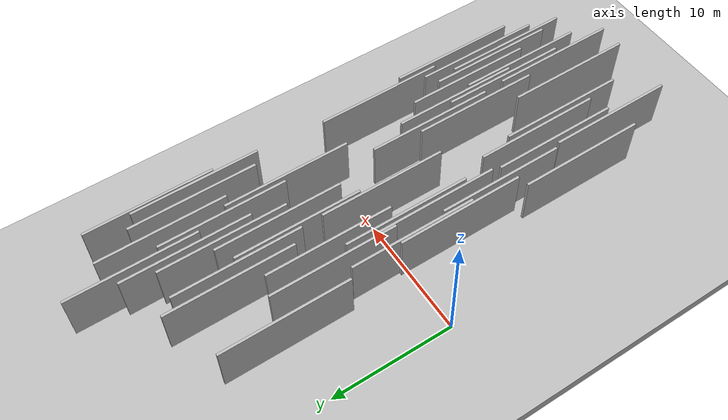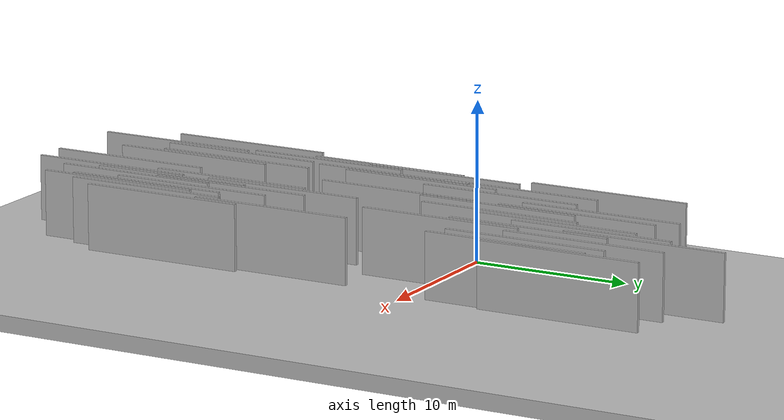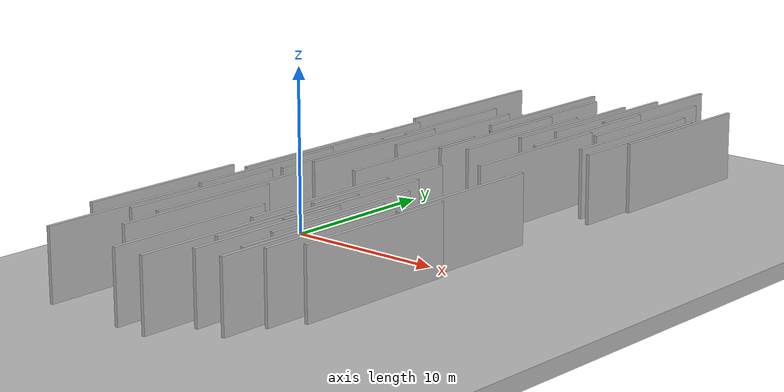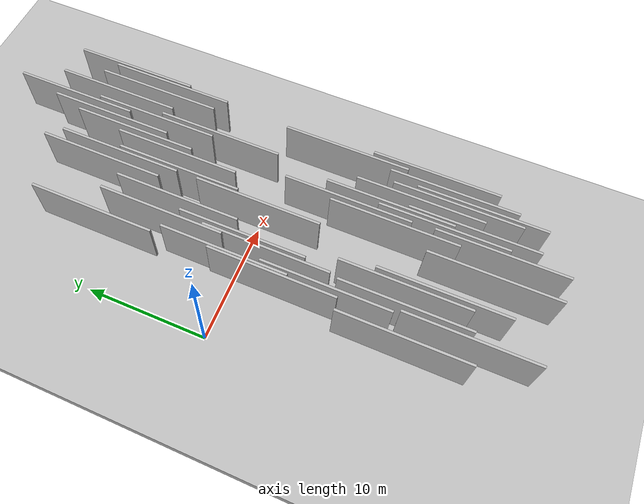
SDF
<?xml version="1.0" encoding="utf-8"?>

<sdf version="1.6">

   <world name="default">

      <gui fullscreen="0">

         <camera name="user_camera">

            <pose>-15 0 4.57585 0 0 0</pose>

            <view_controller>orbit</view_controller>

         </camera>

      </gui>

      <scene>

         <sky>

           <clouds>

             <speed>12</speed>

           </clouds>

         </sky>

         <ambient>0.4 0.4 0.4 1</ambient>

         <background>0.7 0.7 0.7 1</background>

         <shadows>1</shadows>

      </scene>

      <gravity>0 0 -9.8066</gravity>

      <magnetic_field>6e-06 2.3e-05 -4.2e-05</magnetic_field>

      <physics default="0" name="default_physics" type="ode">

         <ode>

            <solver>

               <type>quick</type>

               <iters>10</iters>

               <sor>1.0</sor>

               <use_dynamic_moi_rescaling>0</use_dynamic_moi_rescaling>

            </solver>

            <constraints>

               <cfm>0</cfm>

               <erp>0.2</erp>

               <contact_max_correcting_vel>100</contact_max_correcting_vel>

               <contact_surface_layer>0.001</contact_surface_layer>

            </constraints>

         </ode>

         <max_step_size>0.004</max_step_size>

         <real_time_factor>1</real_time_factor>

         <real_time_update_rate>250</real_time_update_rate>

      </physics>

      <light name="sun" type="directional">

         <cast_shadows>1</cast_shadows>

         <pose>0 0 10 0 0 0</pose>

         <diffuse>0.8 0.8 0.8 1</diffuse>

         <specular>0.2 0.2 0.2 1</specular>

         <attenuation>

            <range>1000</range>

            <constant>0.9</constant>

            <linear>0.01</linear>

            <quadratic>0.001</quadratic>

         </attenuation>

         <direction>-0.5 0.1 -0.9</direction>

      </light>

      <include>

         <name>ground_plane_1</name>

         <uri>model://HANNAS_ground_plane</uri>

         <pose>0 0 0  0 0 0</pose>

      </include>

      <include>

         <name>ground_plane_2</name>

         <uri>model://HANNAS_ground_plane</uri>

         <pose>100 0 0  0 0 0</pose>

      </include>

      <model name="HANNAS_wall_1">

         <static>1</static>

         <pose frame="">12.0063 13.5859 2.5 0.000000 0.000000 1.570796</pose>

         <link name="link">

            <pose frame="">0 0 2.00 0 0 0</pose>

            <collision name="collision">

               <geometry>

                  <box>

                     <size>10.00 0.2 4.00</size>

                  </box>

               </geometry>

               <max_contacts>10</max_contacts>

               <surface>

                  <contact>

                     <ode/>

                  </contact>

                  <bounce/>

                  <friction>

                     <torsional>

                        <ode/>

                     </torsional>

                     <ode/>

                  </friction>

               </surface>

            </collision>

            <visual name="visual">

               <cast_shadows>0</cast_shadows>

               <geometry>

                  <box>

                     <size>10.00 0.2 4.00</size>

                  </box>

               </geometry>

               <material>

                  <script>

                     <uri>model://HANNAS_wall/materials/scripts</uri>

                     <uri>model://HANNAS_wall/materials/textures</uri>

                     <name>vrc/HANNAS_wall</name>

                  </script>

               </material>

            </visual>

            <self_collide>0</self_collide>

            <enable_wind>0</enable_wind>

            <kinematic>0</kinematic>

         </link>

      </model>

      <model name="HANNAS_wall_2">

         <static>1</static>

         <pose frame="">5.9091 -2.4661 2.5 0.000000 0.000000 1.570796</pose>

         <link name="link">

            <pose frame="">0 0 2.00 0 0 0</pose>

            <collision name="collision">

               <geometry>

                  <box>

                     <size>10.00 0.2 4.00</size>

                  </box>

               </geometry>

               <max_contacts>10</max_contacts>

               <surface>

                  <contact>

                     <ode/>

                  </contact>

                  <bounce/>

                  <friction>

                     <torsional>

                        <ode/>

                     </torsional>

                     <ode/>

                  </friction>

               </surface>

            </collision>

            <visual name="visual">

               <cast_shadows>0</cast_shadows>

               <geometry>

                  <box>

                     <size>10.00 0.2 4.00</size>

                  </box>

               </geometry>

               <material>

                  <script>

                     <uri>model://HANNAS_wall/materials/scripts</uri>

                     <uri>model://HANNAS_wall/materials/textures</uri>

                     <name>vrc/HANNAS_wall</name>

                  </script>

               </material>

            </visual>

            <self_collide>0</self_collide>

            <enable_wind>0</enable_wind>

            <kinematic>0</kinematic>

         </link>

      </model>

      <model name="HANNAS_wall_3">

         <static>1</static>

         <pose frame="">13.2497 -15.8099 2.5 0.000000 0.000000 1.570796</pose>

         <link name="link">

            <pose frame="">0 0 2.00 0 0 0</pose>

            <collision name="collision">

               <geometry>

                  <box>

                     <size>10.00 0.2 4.00</size>

                  </box>

               </geometry>

               <max_contacts>10</max_contacts>

               <surface>

                  <contact>

                     <ode/>

                  </contact>

                  <bounce/>

                  <friction>

                     <torsional>

                        <ode/>

                     </torsional>

                     <ode/>

                  </friction>

               </surface>

            </collision>

            <visual name="visual">

               <cast_shadows>0</cast_shadows>

               <geometry>

                  <box>

                     <size>10.00 0.2 4.00</size>

                  </box>

               </geometry>

               <material>

                  <script>

                     <uri>model://HANNAS_wall/materials/scripts</uri>

                     <uri>model://HANNAS_wall/materials/textures</uri>

                     <name>vrc/HANNAS_wall</name>

                  </script>

               </material>

            </visual>

            <self_collide>0</self_collide>

            <enable_wind>0</enable_wind>

            <kinematic>0</kinematic>

         </link>

      </model>

      <model name="HANNAS_wall_4">

         <static>1</static>

         <pose frame="">9.2239 -0.3779 2.5 0.000000 0.000000 1.570796</pose>

         <link name="link">

            <pose frame="">0 0 2.00 0 0 0</pose>

            <collision name="collision">

               <geometry>

                  <box>

                     <size>10.00 0.2 4.00</size>

                  </box>

               </geometry>

               <max_contacts>10</max_contacts>

               <surface>

                  <contact>

                     <ode/>

                  </contact>

                  <bounce/>

                  <friction>

                     <torsional>

                        <ode/>

                     </torsional>

                     <ode/>

                  </friction>

               </surface>

            </collision>

            <visual name="visual">

               <cast_shadows>0</cast_shadows>

               <geometry>

                  <box>

                     <size>10.00 0.2 4.00</size>

                  </box>

               </geometry>

               <material>

                  <script>

                     <uri>model://HANNAS_wall/materials/scripts</uri>

                     <uri>model://HANNAS_wall/materials/textures</uri>

                     <name>vrc/HANNAS_wall</name>

                  </script>

               </material>

            </visual>

            <self_collide>0</self_collide>

            <enable_wind>0</enable_wind>

            <kinematic>0</kinematic>

         </link>

      </model>

      <model name="HANNAS_wall_5">

         <static>1</static>

         <pose frame="">12.7220 17.2323 2.5 0.000000 0.000000 1.570796</pose>

         <link name="link">

            <pose frame="">0 0 2.00 0 0 0</pose>

            <collision name="collision">

               <geometry>

                  <box>

                     <size>10.00 0.2 4.00</size>

                  </box>

               </geometry>

               <max_contacts>10</max_contacts>

               <surface>

                  <contact>

                     <ode/>

                  </contact>

                  <bounce/>

                  <friction>

                     <torsional>

                        <ode/>

                     </torsional>

                     <ode/>

                  </friction>

               </surface>

            </collision>

            <visual name="visual">

               <cast_shadows>0</cast_shadows>

               <geometry>

                  <box>

                     <size>10.00 0.2 4.00</size>

                  </box>

               </geometry>

               <material>

                  <script>

                     <uri>model://HANNAS_wall/materials/scripts</uri>

                     <uri>model://HANNAS_wall/materials/textures</uri>

                     <name>vrc/HANNAS_wall</name>

                  </script>

               </material>

            </visual>

            <self_collide>0</self_collide>

            <enable_wind>0</enable_wind>

            <kinematic>0</kinematic>

         </link>

      </model>

      <model name="HANNAS_wall_6">

         <static>1</static>

         <pose frame="">5.1721 -17.8928 2.5 0.000000 0.000000 1.570796</pose>

         <link name="link">

            <pose frame="">0 0 2.00 0 0 0</pose>

            <collision name="collision">

               <geometry>

                  <box>

                     <size>10.00 0.2 4.00</size>

                  </box>

               </geometry>

               <max_contacts>10</max_contacts>

               <surface>

                  <contact>

                     <ode/>

                  </contact>

                  <bounce/>

                  <friction>

                     <torsional>

                        <ode/>

                     </torsional>

                     <ode/>

                  </friction>

               </surface>

            </collision>

            <visual name="visual">

               <cast_shadows>0</cast_shadows>

               <geometry>

                  <box>

                     <size>10.00 0.2 4.00</size>

                  </box>

               </geometry>

               <material>

                  <script>

                     <uri>model://HANNAS_wall/materials/scripts</uri>

                     <uri>model://HANNAS_wall/materials/textures</uri>

                     <name>vrc/HANNAS_wall</name>

                  </script>

               </material>

            </visual>

            <self_collide>0</self_collide>

            <enable_wind>0</enable_wind>

            <kinematic>0</kinematic>

         </link>

      </model>

      <model name="HANNAS_wall_7">

         <static>1</static>

         <pose frame="">11.5215 -10.2824 2.5 0.000000 0.000000 1.570796</pose>

         <link name="link">

            <pose frame="">0 0 2.00 0 0 0</pose>

            <collision name="collision">

               <geometry>

                  <box>

                     <size>10.00 0.2 4.00</size>

                  </box>

               </geometry>

               <max_contacts>10</max_contacts>

               <surface>

                  <contact>

                     <ode/>

                  </contact>

                  <bounce/>

                  <friction>

                     <torsional>

                        <ode/>

                     </torsional>

                     <ode/>

                  </friction>

               </surface>

            </collision>

            <visual name="visual">

               <cast_shadows>0</cast_shadows>

               <geometry>

                  <box>

                     <size>10.00 0.2 4.00</size>

                  </box>

               </geometry>

               <material>

                  <script>

                     <uri>model://HANNAS_wall/materials/scripts</uri>

                     <uri>model://HANNAS_wall/materials/textures</uri>

                     <name>vrc/HANNAS_wall</name>

                  </script>

               </material>

            </visual>

            <self_collide>0</self_collide>

            <enable_wind>0</enable_wind>

            <kinematic>0</kinematic>

         </link>

      </model>

      <model name="HANNAS_wall_8">

         <static>1</static>

         <pose frame="">10.8162 7.1400 2.5 0.000000 0.000000 1.570796</pose>

         <link name="link">

            <pose frame="">0 0 2.00 0 0 0</pose>

            <collision name="collision">

               <geometry>

                  <box>

                     <size>10.00 0.2 4.00</size>

                  </box>

               </geometry>

               <max_contacts>10</max_contacts>

               <surface>

                  <contact>

                     <ode/>

                  </contact>

                  <bounce/>

                  <friction>

                     <torsional>

                        <ode/>

                     </torsional>

                     <ode/>

                  </friction>

               </surface>

            </collision>

            <visual name="visual">

               <cast_shadows>0</cast_shadows>

               <geometry>

                  <box>

                     <size>10.00 0.2 4.00</size>

                  </box>

               </geometry>

               <material>

                  <script>

                     <uri>model://HANNAS_wall/materials/scripts</uri>

                     <uri>model://HANNAS_wall/materials/textures</uri>

                     <name>vrc/HANNAS_wall</name>

                  </script>

               </material>

            </visual>

            <self_collide>0</self_collide>

            <enable_wind>0</enable_wind>

            <kinematic>0</kinematic>

         </link>

      </model>

      <model name="HANNAS_wall_9">

         <static>1</static>

         <pose frame="">9.5311 6.3362 2.5 0.000000 0.000000 1.570796</pose>

         <link name="link">

            <pose frame="">0 0 2.00 0 0 0</pose>

            <collision name="collision">

               <geometry>

                  <box>

                     <size>10.00 0.2 4.00</size>

                  </box>

               </geometry>

               <max_contacts>10</max_contacts>

               <surface>

                  <contact>

                     <ode/>

                  </contact>

                  <bounce/>

                  <friction>

                     <torsional>

                        <ode/>

                     </torsional>

                     <ode/>

                  </friction>

               </surface>

            </collision>

            <visual name="visual">

               <cast_shadows>0</cast_shadows>

               <geometry>

                  <box>

                     <size>10.00 0.2 4.00</size>

                  </box>

               </geometry>

               <material>

                  <script>

                     <uri>model://HANNAS_wall/materials/scripts</uri>

                     <uri>model://HANNAS_wall/materials/textures</uri>

                     <name>vrc/HANNAS_wall</name>

                  </script>

               </material>

            </visual>

            <self_collide>0</self_collide>

            <enable_wind>0</enable_wind>

            <kinematic>0</kinematic>

         </link>

      </model>

      <model name="HANNAS_wall_10">

         <static>1</static>

         <pose frame="">14.3169 14.2576 2.5 0.000000 0.000000 1.570796</pose>

         <link name="link">

            <pose frame="">0 0 2.00 0 0 0</pose>

            <collision name="collision">

               <geometry>

                  <box>

                     <size>10.00 0.2 4.00</size>

                  </box>

               </geometry>

               <max_contacts>10</max_contacts>

               <surface>

                  <contact>

                     <ode/>

                  </contact>

                  <bounce/>

                  <friction>

                     <torsional>

                        <ode/>

                     </torsional>

                     <ode/>

                  </friction>

               </surface>

            </collision>

            <visual name="visual">

               <cast_shadows>0</cast_shadows>

               <geometry>

                  <box>

                     <size>10.00 0.2 4.00</size>

                  </box>

               </geometry>

               <material>

                  <script>

                     <uri>model://HANNAS_wall/materials/scripts</uri>

                     <uri>model://HANNAS_wall/materials/textures</uri>

                     <name>vrc/HANNAS_wall</name>

                  </script>

               </material>

            </visual>

            <self_collide>0</self_collide>

            <enable_wind>0</enable_wind>

            <kinematic>0</kinematic>

         </link>

      </model>

      <model name="HANNAS_wall_11">

         <static>1</static>

         <pose frame="">12.9523 -9.4667 2.5 0.000000 0.000000 1.570796</pose>

         <link name="link">

            <pose frame="">0 0 2.00 0 0 0</pose>

            <collision name="collision">

               <geometry>

                  <box>

                     <size>10.00 0.2 4.00</size>

                  </box>

               </geometry>

               <max_contacts>10</max_contacts>

               <surface>

                  <contact>

                     <ode/>

                  </contact>

                  <bounce/>

                  <friction>

                     <torsional>

                        <ode/>

                     </torsional>

                     <ode/>

                  </friction>

               </surface>

            </collision>

            <visual name="visual">

               <cast_shadows>0</cast_shadows>

               <geometry>

                  <box>

                     <size>10.00 0.2 4.00</size>

                  </box>

               </geometry>

               <material>

                  <script>

                     <uri>model://HANNAS_wall/materials/scripts</uri>

                     <uri>model://HANNAS_wall/materials/textures</uri>

                     <name>vrc/HANNAS_wall</name>

                  </script>

               </material>

            </visual>

            <self_collide>0</self_collide>

            <enable_wind>0</enable_wind>

            <kinematic>0</kinematic>

         </link>

      </model>

      <model name="HANNAS_wall_12">

         <static>1</static>

         <pose frame="">7.1455 -12.5662 2.5 0.000000 0.000000 1.570796</pose>

         <link name="link">

            <pose frame="">0 0 2.00 0 0 0</pose>

            <collision name="collision">

               <geometry>

                  <box>

                     <size>10.00 0.2 4.00</size>

                  </box>

               </geometry>

               <max_contacts>10</max_contacts>

               <surface>

                  <contact>

                     <ode/>

                  </contact>

                  <bounce/>

                  <friction>

                     <torsional>

                        <ode/>

                     </torsional>

                     <ode/>

                  </friction>

               </surface>

            </collision>

            <visual name="visual">

               <cast_shadows>0</cast_shadows>

               <geometry>

                  <box>

                     <size>10.00 0.2 4.00</size>

                  </box>

               </geometry>

               <material>

                  <script>

                     <uri>model://HANNAS_wall/materials/scripts</uri>

                     <uri>model://HANNAS_wall/materials/textures</uri>

                     <name>vrc/HANNAS_wall</name>

                  </script>

               </material>

            </visual>

            <self_collide>0</self_collide>

            <enable_wind>0</enable_wind>

            <kinematic>0</kinematic>

         </link>

      </model>

      <model name="HANNAS_wall_13">

         <static>1</static>

         <pose frame="">11.3913 11.1319 2.5 0.000000 0.000000 1.570796</pose>

         <link name="link">

            <pose frame="">0 0 2.00 0 0 0</pose>

            <collision name="collision">

               <geometry>

                  <box>

                     <size>10.00 0.2 4.00</size>

                  </box>

               </geometry>

               <max_contacts>10</max_contacts>

               <surface>

                  <contact>

                     <ode/>

                  </contact>

                  <bounce/>

                  <friction>

                     <torsional>

                        <ode/>

                     </torsional>

                     <ode/>

                  </friction>

               </surface>

            </collision>

            <visual name="visual">

               <cast_shadows>0</cast_shadows>

               <geometry>

                  <box>

                     <size>10.00 0.2 4.00</size>

                  </box>

               </geometry>

               <material>

                  <script>

                     <uri>model://HANNAS_wall/materials/scripts</uri>

                     <uri>model://HANNAS_wall/materials/textures</uri>

                     <name>vrc/HANNAS_wall</name>

                  </script>

               </material>

            </visual>

            <self_collide>0</self_collide>

            <enable_wind>0</enable_wind>

            <kinematic>0</kinematic>

         </link>

      </model>

      <model name="HANNAS_wall_14">

         <static>1</static>

         <pose frame="">4.3407 -3.6009 2.5 0.000000 0.000000 1.570796</pose>

         <link name="link">

            <pose frame="">0 0 2.00 0 0 0</pose>

            <collision name="collision">

               <geometry>

                  <box>

                     <size>10.00 0.2 4.00</size>

                  </box>

               </geometry>

               <max_contacts>10</max_contacts>

               <surface>

                  <contact>

                     <ode/>

                  </contact>

                  <bounce/>

                  <friction>

                     <torsional>

                        <ode/>

                     </torsional>

                     <ode/>

                  </friction>

               </surface>

            </collision>

            <visual name="visual">

               <cast_shadows>0</cast_shadows>

               <geometry>

                  <box>

                     <size>10.00 0.2 4.00</size>

                  </box>

               </geometry>

               <material>

                  <script>

                     <uri>model://HANNAS_wall/materials/scripts</uri>

                     <uri>model://HANNAS_wall/materials/textures</uri>

                     <name>vrc/HANNAS_wall</name>

                  </script>

               </material>

            </visual>

            <self_collide>0</self_collide>

            <enable_wind>0</enable_wind>

            <kinematic>0</kinematic>

         </link>

      </model>

      <model name="HANNAS_wall_15">

         <static>1</static>

         <pose frame="">10.2185 -18.1284 2.5 0.000000 0.000000 1.570796</pose>

         <link name="link">

            <pose frame="">0 0 2.00 0 0 0</pose>

            <collision name="collision">

               <geometry>

                  <box>

                     <size>10.00 0.2 4.00</size>

                  </box>

               </geometry>

               <max_contacts>10</max_contacts>

               <surface>

                  <contact>

                     <ode/>

                  </contact>

                  <bounce/>

                  <friction>

                     <torsional>

                        <ode/>

                     </torsional>

                     <ode/>

                  </friction>

               </surface>

            </collision>

            <visual name="visual">

               <cast_shadows>0</cast_shadows>

               <geometry>

                  <box>

                     <size>10.00 0.2 4.00</size>

                  </box>

               </geometry>

               <material>

                  <script>

                     <uri>model://HANNAS_wall/materials/scripts</uri>

                     <uri>model://HANNAS_wall/materials/textures</uri>

                     <name>vrc/HANNAS_wall</name>

                  </script>

               </material>

            </visual>

            <self_collide>0</self_collide>

            <enable_wind>0</enable_wind>

            <kinematic>0</kinematic>

         </link>

      </model>

      <model name="HANNAS_wall_16">

         <static>1</static>

         <pose frame="">9.1690 11.2508 2.5 0.000000 0.000000 1.570796</pose>

         <link name="link">

            <pose frame="">0 0 2.00 0 0 0</pose>

            <collision name="collision">

               <geometry>

                  <box>

                     <size>10.00 0.2 4.00</size>

                  </box>

               </geometry>

               <max_contacts>10</max_contacts>

               <surface>

                  <contact>

                     <ode/>

                  </contact>

                  <bounce/>

                  <friction>

                     <torsional>

                        <ode/>

                     </torsional>

                     <ode/>

                  </friction>

               </surface>

            </collision>

            <visual name="visual">

               <cast_shadows>0</cast_shadows>

               <geometry>

                  <box>

                     <size>10.00 0.2 4.00</size>

                  </box>

               </geometry>

               <material>

                  <script>

                     <uri>model://HANNAS_wall/materials/scripts</uri>

                     <uri>model://HANNAS_wall/materials/textures</uri>

                     <name>vrc/HANNAS_wall</name>

                  </script>

               </material>

            </visual>

            <self_collide>0</self_collide>

            <enable_wind>0</enable_wind>

            <kinematic>0</kinematic>

         </link>

      </model>

      <model name="HANNAS_wall_17">

         <static>1</static>

         <pose frame="">16.8760 13.9712 2.5 0.000000 0.000000 1.570796</pose>

         <link name="link">

            <pose frame="">0 0 2.00 0 0 0</pose>

            <collision name="collision">

               <geometry>

                  <box>

                     <size>10.00 0.2 4.00</size>

                  </box>

               </geometry>

               <max_contacts>10</max_contacts>

               <surface>

                  <contact>

                     <ode/>

                  </contact>

                  <bounce/>

                  <friction>

                     <torsional>

                        <ode/>

                     </torsional>

                     <ode/>

                  </friction>

               </surface>

            </collision>

            <visual name="visual">

               <cast_shadows>0</cast_shadows>

               <geometry>

                  <box>

                     <size>10.00 0.2 4.00</size>

                  </box>

               </geometry>

               <material>

                  <script>

                     <uri>model://HANNAS_wall/materials/scripts</uri>

                     <uri>model://HANNAS_wall/materials/textures</uri>

                     <name>vrc/HANNAS_wall</name>

                  </script>

               </material>

            </visual>

            <self_collide>0</self_collide>

            <enable_wind>0</enable_wind>

            <kinematic>0</kinematic>

         </link>

      </model>

      <model name="HANNAS_wall_18">

         <static>1</static>

         <pose frame="">3.8398 10.6690 2.5 0.000000 0.000000 1.570796</pose>

         <link name="link">

            <pose frame="">0 0 2.00 0 0 0</pose>

            <collision name="collision">

               <geometry>

                  <box>

                     <size>10.00 0.2 4.00</size>

                  </box>

               </geometry>

               <max_contacts>10</max_contacts>

               <surface>

                  <contact>

                     <ode/>

                  </contact>

                  <bounce/>

                  <friction>

                     <torsional>

                        <ode/>

                     </torsional>

                     <ode/>

                  </friction>

               </surface>

            </collision>

            <visual name="visual">

               <cast_shadows>0</cast_shadows>

               <geometry>

                  <box>

                     <size>10.00 0.2 4.00</size>

                  </box>

               </geometry>

               <material>

                  <script>

                     <uri>model://HANNAS_wall/materials/scripts</uri>

                     <uri>model://HANNAS_wall/materials/textures</uri>

                     <name>vrc/HANNAS_wall</name>

                  </script>

               </material>

            </visual>

            <self_collide>0</self_collide>

            <enable_wind>0</enable_wind>

            <kinematic>0</kinematic>

         </link>

      </model>

      <model name="HANNAS_wall_19">

         <static>1</static>

         <pose frame="">13.1487 10.1873 2.5 0.000000 0.000000 1.570796</pose>

         <link name="link">

            <pose frame="">0 0 2.00 0 0 0</pose>

            <collision name="collision">

               <geometry>

                  <box>

                     <size>10.00 0.2 4.00</size>

                  </box>

               </geometry>

               <max_contacts>10</max_contacts>

               <surface>

                  <contact>

                     <ode/>

                  </contact>

                  <bounce/>

                  <friction>

                     <torsional>

                        <ode/>

                     </torsional>

                     <ode/>

                  </friction>

               </surface>

            </collision>

            <visual name="visual">

               <cast_shadows>0</cast_shadows>

               <geometry>

                  <box>

                     <size>10.00 0.2 4.00</size>

                  </box>

               </geometry>

               <material>

                  <script>

                     <uri>model://HANNAS_wall/materials/scripts</uri>

                     <uri>model://HANNAS_wall/materials/textures</uri>

                     <name>vrc/HANNAS_wall</name>

                  </script>

               </material>

            </visual>

            <self_collide>0</self_collide>

            <enable_wind>0</enable_wind>

            <kinematic>0</kinematic>

         </link>

      </model>

      <model name="HANNAS_wall_20">

         <static>1</static>

         <pose frame="">16.6032 10.5202 2.5 0.000000 0.000000 1.570796</pose>

         <link name="link">

            <pose frame="">0 0 2.00 0 0 0</pose>

            <collision name="collision">

               <geometry>

                  <box>

                     <size>10.00 0.2 4.00</size>

                  </box>

               </geometry>

               <max_contacts>10</max_contacts>

               <surface>

                  <contact>

                     <ode/>

                  </contact>

                  <bounce/>

                  <friction>

                     <torsional>

                        <ode/>

                     </torsional>

                     <ode/>

                  </friction>

               </surface>

            </collision>

            <visual name="visual">

               <cast_shadows>0</cast_shadows>

               <geometry>

                  <box>

                     <size>10.00 0.2 4.00</size>

                  </box>

               </geometry>

               <material>

                  <script>

                     <uri>model://HANNAS_wall/materials/scripts</uri>

                     <uri>model://HANNAS_wall/materials/textures</uri>

                     <name>vrc/HANNAS_wall</name>

                  </script>

               </material>

            </visual>

            <self_collide>0</self_collide>

            <enable_wind>0</enable_wind>

            <kinematic>0</kinematic>

         </link>

      </model>

      <model name="HANNAS_wall_21">

         <static>1</static>

         <pose frame="">16.7167 -11.8867 2.5 0.000000 0.000000 1.570796</pose>

         <link name="link">

            <pose frame="">0 0 2.00 0 0 0</pose>

            <collision name="collision">

               <geometry>

                  <box>

                     <size>10.00 0.2 4.00</size>

                  </box>

               </geometry>

               <max_contacts>10</max_contacts>

               <surface>

                  <contact>

                     <ode/>

                  </contact>

                  <bounce/>

                  <friction>

                     <torsional>

                        <ode/>

                     </torsional>

                     <ode/>

                  </friction>

               </surface>

            </collision>

            <visual name="visual">

               <cast_shadows>0</cast_shadows>

               <geometry>

                  <box>

                     <size>10.00 0.2 4.00</size>

                  </box>

               </geometry>

               <material>

                  <script>

                     <uri>model://HANNAS_wall/materials/scripts</uri>

                     <uri>model://HANNAS_wall/materials/textures</uri>

                     <name>vrc/HANNAS_wall</name>

                  </script>

               </material>

            </visual>

            <self_collide>0</self_collide>

            <enable_wind>0</enable_wind>

            <kinematic>0</kinematic>

         </link>

      </model>

      <model name="HANNAS_wall_22">

         <static>1</static>

         <pose frame="">3.4434 -13.6741 2.5 0.000000 0.000000 1.570796</pose>

         <link name="link">

            <pose frame="">0 0 2.00 0 0 0</pose>

            <collision name="collision">

               <geometry>

                  <box>

                     <size>10.00 0.2 4.00</size>

                  </box>

               </geometry>

               <max_contacts>10</max_contacts>

               <surface>

                  <contact>

                     <ode/>

                  </contact>

                  <bounce/>

                  <friction>

                     <torsional>

                        <ode/>

                     </torsional>

                     <ode/>

                  </friction>

               </surface>

            </collision>

            <visual name="visual">

               <cast_shadows>0</cast_shadows>

               <geometry>

                  <box>

                     <size>10.00 0.2 4.00</size>

                  </box>

               </geometry>

               <material>

                  <script>

                     <uri>model://HANNAS_wall/materials/scripts</uri>

                     <uri>model://HANNAS_wall/materials/textures</uri>

                     <name>vrc/HANNAS_wall</name>

                  </script>

               </material>

            </visual>

            <self_collide>0</self_collide>

            <enable_wind>0</enable_wind>

            <kinematic>0</kinematic>

         </link>

      </model>

      <model name="HANNAS_wall_23">

         <static>1</static>

         <pose frame="">12.0294 -6.4774 2.5 0.000000 0.000000 1.570796</pose>

         <link name="link">

            <pose frame="">0 0 2.00 0 0 0</pose>

            <collision name="collision">

               <geometry>

                  <box>

                     <size>10.00 0.2 4.00</size>

                  </box>

               </geometry>

               <max_contacts>10</max_contacts>

               <surface>

                  <contact>

                     <ode/>

                  </contact>

                  <bounce/>

                  <friction>

                     <torsional>

                        <ode/>

                     </torsional>

                     <ode/>

                  </friction>

               </surface>

            </collision>

            <visual name="visual">

               <cast_shadows>0</cast_shadows>

               <geometry>

                  <box>

                     <size>10.00 0.2 4.00</size>

                  </box>

               </geometry>

               <material>

                  <script>

                     <uri>model://HANNAS_wall/materials/scripts</uri>

                     <uri>model://HANNAS_wall/materials/textures</uri>

                     <name>vrc/HANNAS_wall</name>

                  </script>

               </material>

            </visual>

            <self_collide>0</self_collide>

            <enable_wind>0</enable_wind>

            <kinematic>0</kinematic>

         </link>

      </model>

      <model name="HANNAS_wall_24">

         <static>1</static>

         <pose frame="">12.1651 -18.1737 2.5 0.000000 0.000000 1.570796</pose>

         <link name="link">

            <pose frame="">0 0 2.00 0 0 0</pose>

            <collision name="collision">

               <geometry>

                  <box>

                     <size>10.00 0.2 4.00</size>

                  </box>

               </geometry>

               <max_contacts>10</max_contacts>

               <surface>

                  <contact>

                     <ode/>

                  </contact>

                  <bounce/>

                  <friction>

                     <torsional>

                        <ode/>

                     </torsional>

                     <ode/>

                  </friction>

               </surface>

            </collision>

            <visual name="visual">

               <cast_shadows>0</cast_shadows>

               <geometry>

                  <box>

                     <size>10.00 0.2 4.00</size>

                  </box>

               </geometry>

               <material>

                  <script>

                     <uri>model://HANNAS_wall/materials/scripts</uri>

                     <uri>model://HANNAS_wall/materials/textures</uri>

                     <name>vrc/HANNAS_wall</name>

                  </script>

               </material>

            </visual>

            <self_collide>0</self_collide>

            <enable_wind>0</enable_wind>

            <kinematic>0</kinematic>

         </link>

      </model>

      <model name="HANNAS_wall_25">

         <static>1</static>

         <pose frame="">15.1448 -15.8815 2.5 0.000000 0.000000 1.570796</pose>

         <link name="link">

            <pose frame="">0 0 2.00 0 0 0</pose>

            <collision name="collision">

               <geometry>

                  <box>

                     <size>10.00 0.2 4.00</size>

                  </box>

               </geometry>

               <max_contacts>10</max_contacts>

               <surface>

                  <contact>

                     <ode/>

                  </contact>

                  <bounce/>

                  <friction>

                     <torsional>

                        <ode/>

                     </torsional>

                     <ode/>

                  </friction>

               </surface>

            </collision>

            <visual name="visual">

               <cast_shadows>0</cast_shadows>

               <geometry>

                  <box>

                     <size>10.00 0.2 4.00</size>

                  </box>

               </geometry>

               <material>

                  <script>

                     <uri>model://HANNAS_wall/materials/scripts</uri>

                     <uri>model://HANNAS_wall/materials/textures</uri>

                     <name>vrc/HANNAS_wall</name>

                  </script>

               </material>

            </visual>

            <self_collide>0</self_collide>

            <enable_wind>0</enable_wind>

            <kinematic>0</kinematic>

         </link>

      </model>

      <model name="HANNAS_wall_26">

         <static>1</static>

         <pose frame="">16.2576 -4.8201 2.5 0.000000 0.000000 1.570796</pose>

         <link name="link">

            <pose frame="">0 0 2.00 0 0 0</pose>

            <collision name="collision">

               <geometry>

                  <box>

                     <size>10.00 0.2 4.00</size>

                  </box>

               </geometry>

               <max_contacts>10</max_contacts>

               <surface>

                  <contact>

                     <ode/>

                  </contact>

                  <bounce/>

                  <friction>

                     <torsional>

                        <ode/>

                     </torsional>

                     <ode/>

                  </friction>

               </surface>

            </collision>

            <visual name="visual">

               <cast_shadows>0</cast_shadows>

               <geometry>

                  <box>

                     <size>10.00 0.2 4.00</size>

                  </box>

               </geometry>

               <material>

                  <script>

                     <uri>model://HANNAS_wall/materials/scripts</uri>

                     <uri>model://HANNAS_wall/materials/textures</uri>

                     <name>vrc/HANNAS_wall</name>

                  </script>

               </material>

            </visual>

            <self_collide>0</self_collide>

            <enable_wind>0</enable_wind>

            <kinematic>0</kinematic>

         </link>

      </model>

      <model name="HANNAS_wall_27">

         <static>1</static>

         <pose frame="">4.8833 -7.4848 2.5 0.000000 0.000000 1.570796</pose>

         <link name="link">

            <pose frame="">0 0 2.00 0 0 0</pose>

            <collision name="collision">

               <geometry>

                  <box>

                     <size>10.00 0.2 4.00</size>

                  </box>

               </geometry>

               <max_contacts>10</max_contacts>

               <surface>

                  <contact>

                     <ode/>

                  </contact>

                  <bounce/>

                  <friction>

                     <torsional>

                        <ode/>

                     </torsional>

                     <ode/>

                  </friction>

               </surface>

            </collision>

            <visual name="visual">

               <cast_shadows>0</cast_shadows>

               <geometry>

                  <box>

                     <size>10.00 0.2 4.00</size>

                  </box>

               </geometry>

               <material>

                  <script>

                     <uri>model://HANNAS_wall/materials/scripts</uri>

                     <uri>model://HANNAS_wall/materials/textures</uri>

                     <name>vrc/HANNAS_wall</name>

                  </script>

               </material>

            </visual>

            <self_collide>0</self_collide>

            <enable_wind>0</enable_wind>

            <kinematic>0</kinematic>

         </link>

      </model>

      <model name="HANNAS_wall_28">

         <static>1</static>

         <pose frame="">15.5816 11.2316 2.5 0.000000 0.000000 1.570796</pose>

         <link name="link">

            <pose frame="">0 0 2.00 0 0 0</pose>

            <collision name="collision">

               <geometry>

                  <box>

                     <size>10.00 0.2 4.00</size>

                  </box>

               </geometry>

               <max_contacts>10</max_contacts>

               <surface>

                  <contact>

                     <ode/>

                  </contact>

                  <bounce/>

                  <friction>

                     <torsional>

                        <ode/>

                     </torsional>

                     <ode/>

                  </friction>

               </surface>

            </collision>

            <visual name="visual">

               <cast_shadows>0</cast_shadows>

               <geometry>

                  <box>

                     <size>10.00 0.2 4.00</size>

                  </box>

               </geometry>

               <material>

                  <script>

                     <uri>model://HANNAS_wall/materials/scripts</uri>

                     <uri>model://HANNAS_wall/materials/textures</uri>

                     <name>vrc/HANNAS_wall</name>

                  </script>

               </material>

            </visual>

            <self_collide>0</self_collide>

            <enable_wind>0</enable_wind>

            <kinematic>0</kinematic>

         </link>

      </model>

      <model name="HANNAS_wall_29">

         <static>1</static>

         <pose frame="">5.7026 -13.0424 2.5 0.000000 0.000000 1.570796</pose>

         <link name="link">

            <pose frame="">0 0 2.00 0 0 0</pose>

            <collision name="collision">

               <geometry>

                  <box>

                     <size>10.00 0.2 4.00</size>

                  </box>

               </geometry>

               <max_contacts>10</max_contacts>

               <surface>

                  <contact>

                     <ode/>

                  </contact>

                  <bounce/>

                  <friction>

                     <torsional>

                        <ode/>

                     </torsional>

                     <ode/>

                  </friction>

               </surface>

            </collision>

            <visual name="visual">

               <cast_shadows>0</cast_shadows>

               <geometry>

                  <box>

                     <size>10.00 0.2 4.00</size>

                  </box>

               </geometry>

               <material>

                  <script>

                     <uri>model://HANNAS_wall/materials/scripts</uri>

                     <uri>model://HANNAS_wall/materials/textures</uri>

                     <name>vrc/HANNAS_wall</name>

                  </script>

               </material>

            </visual>

            <self_collide>0</self_collide>

            <enable_wind>0</enable_wind>

            <kinematic>0</kinematic>

         </link>

      </model>

      <model name="HANNAS_wall_30">

         <static>1</static>

         <pose frame="">14.0896 -11.4577 2.5 0.000000 0.000000 1.570796</pose>

         <link name="link">

            <pose frame="">0 0 2.00 0 0 0</pose>

            <collision name="collision">

               <geometry>

                  <box>

                     <size>10.00 0.2 4.00</size>

                  </box>

               </geometry>

               <max_contacts>10</max_contacts>

               <surface>

                  <contact>

                     <ode/>

                  </contact>

                  <bounce/>

                  <friction>

                     <torsional>

                        <ode/>

                     </torsional>

                     <ode/>

                  </friction>

               </surface>

            </collision>

            <visual name="visual">

               <cast_shadows>0</cast_shadows>

               <geometry>

                  <box>

                     <size>10.00 0.2 4.00</size>

                  </box>

               </geometry>

               <material>

                  <script>

                     <uri>model://HANNAS_wall/materials/scripts</uri>

                     <uri>model://HANNAS_wall/materials/textures</uri>

                     <name>vrc/HANNAS_wall</name>

                  </script>

               </material>

            </visual>

            <self_collide>0</self_collide>

            <enable_wind>0</enable_wind>

            <kinematic>0</kinematic>

         </link>

      </model>

      <model name="HANNAS_wall_31">

         <static>1</static>

         <pose frame="">5.7072 5.8696 2.5 0.000000 0.000000 1.570796</pose>

         <link name="link">

            <pose frame="">0 0 2.00 0 0 0</pose>

            <collision name="collision">

               <geometry>

                  <box>

                     <size>10.00 0.2 4.00</size>

                  </box>

               </geometry>

               <max_contacts>10</max_contacts>

               <surface>

                  <contact>

                     <ode/>

                  </contact>

                  <bounce/>

                  <friction>

                     <torsional>

                        <ode/>

                     </torsional>

                     <ode/>

                  </friction>

               </surface>

            </collision>

            <visual name="visual">

               <cast_shadows>0</cast_shadows>

               <geometry>

                  <box>

                     <size>10.00 0.2 4.00</size>

                  </box>

               </geometry>

               <material>

                  <script>

                     <uri>model://HANNAS_wall/materials/scripts</uri>

                     <uri>model://HANNAS_wall/materials/textures</uri>

                     <name>vrc/HANNAS_wall</name>

                  </script>

               </material>

            </visual>

            <self_collide>0</self_collide>

            <enable_wind>0</enable_wind>

            <kinematic>0</kinematic>

         </link>

      </model>

      <model name="HANNAS_wall_32">

         <static>1</static>

         <pose frame="">4.5580 0.2365 2.5 0.000000 0.000000 1.570796</pose>

         <link name="link">

            <pose frame="">0 0 2.00 0 0 0</pose>

            <collision name="collision">

               <geometry>

                  <box>

                     <size>10.00 0.2 4.00</size>

                  </box>

               </geometry>

               <max_contacts>10</max_contacts>

               <surface>

                  <contact>

                     <ode/>

                  </contact>

                  <bounce/>

                  <friction>

                     <torsional>

                        <ode/>

                     </torsional>

                     <ode/>

                  </friction>

               </surface>

            </collision>

            <visual name="visual">

               <cast_shadows>0</cast_shadows>

               <geometry>

                  <box>

                     <size>10.00 0.2 4.00</size>

                  </box>

               </geometry>

               <material>

                  <script>

                     <uri>model://HANNAS_wall/materials/scripts</uri>

                     <uri>model://HANNAS_wall/materials/textures</uri>

                     <name>vrc/HANNAS_wall</name>

                  </script>

               </material>

            </visual>

            <self_collide>0</self_collide>

            <enable_wind>0</enable_wind>

            <kinematic>0</kinematic>

         </link>

      </model>

      <model name="HANNAS_wall_33">

         <static>1</static>

         <pose frame="">12.5889 -13.7189 2.5 0.000000 0.000000 1.570796</pose>

         <link name="link">

            <pose frame="">0 0 2.00 0 0 0</pose>

            <collision name="collision">

               <geometry>

                  <box>

                     <size>10.00 0.2 4.00</size>

                  </box>

               </geometry>

               <max_contacts>10</max_contacts>

               <surface>

                  <contact>

                     <ode/>

                  </contact>

                  <bounce/>

                  <friction>

                     <torsional>

                        <ode/>

                     </torsional>

                     <ode/>

                  </friction>

               </surface>

            </collision>

            <visual name="visual">

               <cast_shadows>0</cast_shadows>

               <geometry>

                  <box>

                     <size>10.00 0.2 4.00</size>

                  </box>

               </geometry>

               <material>

                  <script>

                     <uri>model://HANNAS_wall/materials/scripts</uri>

                     <uri>model://HANNAS_wall/materials/textures</uri>

                     <name>vrc/HANNAS_wall</name>

                  </script>

               </material>

            </visual>

            <self_collide>0</self_collide>

            <enable_wind>0</enable_wind>

            <kinematic>0</kinematic>

         </link>

      </model>

      <model name="HANNAS_wall_34">

         <static>1</static>

         <pose frame="">8.2272 12.3349 2.5 0.000000 0.000000 1.570796</pose>

         <link name="link">

            <pose frame="">0 0 2.00 0 0 0</pose>

            <collision name="collision">

               <geometry>

                  <box>

                     <size>10.00 0.2 4.00</size>

                  </box>

               </geometry>

               <max_contacts>10</max_contacts>

               <surface>

                  <contact>

                     <ode/>

                  </contact>

                  <bounce/>

                  <friction>

                     <torsional>

                        <ode/>

                     </torsional>

                     <ode/>

                  </friction>

               </surface>

            </collision>

            <visual name="visual">

               <cast_shadows>0</cast_shadows>

               <geometry>

                  <box>

                     <size>10.00 0.2 4.00</size>

                  </box>

               </geometry>

               <material>

                  <script>

                     <uri>model://HANNAS_wall/materials/scripts</uri>

                     <uri>model://HANNAS_wall/materials/textures</uri>

                     <name>vrc/HANNAS_wall</name>

                  </script>

               </material>

            </visual>

            <self_collide>0</self_collide>

            <enable_wind>0</enable_wind>

            <kinematic>0</kinematic>

         </link>

      </model>

      <model name="HANNAS_wall_35">

         <static>1</static>

         <pose frame="">15.7305 -13.5724 2.5 0.000000 0.000000 1.570796</pose>

         <link name="link">

            <pose frame="">0 0 2.00 0 0 0</pose>

            <collision name="collision">

               <geometry>

                  <box>

                     <size>10.00 0.2 4.00</size>

                  </box>

               </geometry>

               <max_contacts>10</max_contacts>

               <surface>

                  <contact>

                     <ode/>

                  </contact>

                  <bounce/>

                  <friction>

                     <torsional>

                        <ode/>

                     </torsional>

                     <ode/>

                  </friction>

               </surface>

            </collision>

            <visual name="visual">

               <cast_shadows>0</cast_shadows>

               <geometry>

                  <box>

                     <size>10.00 0.2 4.00</size>

                  </box>

               </geometry>

               <material>

                  <script>

                     <uri>model://HANNAS_wall/materials/scripts</uri>

                     <uri>model://HANNAS_wall/materials/textures</uri>

                     <name>vrc/HANNAS_wall</name>

                  </script>

               </material>

            </visual>

            <self_collide>0</self_collide>

            <enable_wind>0</enable_wind>

            <kinematic>0</kinematic>

         </link>

      </model>

      <model name="HANNAS_wall_36">

         <static>1</static>

         <pose frame="">7.1974 5.2907 2.5 0.000000 0.000000 1.570796</pose>

         <link name="link">

            <pose frame="">0 0 2.00 0 0 0</pose>

            <collision name="collision">

               <geometry>

                  <box>

                     <size>10.00 0.2 4.00</size>

                  </box>

               </geometry>

               <max_contacts>10</max_contacts>

               <surface>

                  <contact>

                     <ode/>

                  </contact>

                  <bounce/>

                  <friction>

                     <torsional>

                        <ode/>

                     </torsional>

                     <ode/>

                  </friction>

               </surface>

            </collision>

            <visual name="visual">

               <cast_shadows>0</cast_shadows>

               <geometry>

                  <box>

                     <size>10.00 0.2 4.00</size>

                  </box>

               </geometry>

               <material>

                  <script>

                     <uri>model://HANNAS_wall/materials/scripts</uri>

                     <uri>model://HANNAS_wall/materials/textures</uri>

                     <name>vrc/HANNAS_wall</name>

                  </script>

               </material>

            </visual>

            <self_collide>0</self_collide>

            <enable_wind>0</enable_wind>

            <kinematic>0</kinematic>

         </link>

      </model>

      <model name="HANNAS_wall_37">

         <static>1</static>

         <pose frame="">6.3010 -0.4263 2.5 0.000000 0.000000 1.570796</pose>

         <link name="link">

            <pose frame="">0 0 2.00 0 0 0</pose>

            <collision name="collision">

               <geometry>

                  <box>

                     <size>10.00 0.2 4.00</size>

                  </box>

               </geometry>

               <max_contacts>10</max_contacts>

               <surface>

                  <contact>

                     <ode/>

                  </contact>

                  <bounce/>

                  <friction>

                     <torsional>

                        <ode/>

                     </torsional>

                     <ode/>

                  </friction>

               </surface>

            </collision>

            <visual name="visual">

               <cast_shadows>0</cast_shadows>

               <geometry>

                  <box>

                     <size>10.00 0.2 4.00</size>

                  </box>

               </geometry>

               <material>

                  <script>

                     <uri>model://HANNAS_wall/materials/scripts</uri>

                     <uri>model://HANNAS_wall/materials/textures</uri>

                     <name>vrc/HANNAS_wall</name>

                  </script>

               </material>

            </visual>

            <self_collide>0</self_collide>

            <enable_wind>0</enable_wind>

            <kinematic>0</kinematic>

         </link>

      </model>

      <model name="HANNAS_wall_38">

         <static>1</static>

         <pose frame="">13.6157 4.8083 2.5 0.000000 0.000000 1.570796</pose>

         <link name="link">

            <pose frame="">0 0 2.00 0 0 0</pose>

            <collision name="collision">

               <geometry>

                  <box>

                     <size>10.00 0.2 4.00</size>

                  </box>

               </geometry>

               <max_contacts>10</max_contacts>

               <surface>

                  <contact>

                     <ode/>

                  </contact>

                  <bounce/>

                  <friction>

                     <torsional>

                        <ode/>

                     </torsional>

                     <ode/>

                  </friction>

               </surface>

            </collision>

            <visual name="visual">

               <cast_shadows>0</cast_shadows>

               <geometry>

                  <box>

                     <size>10.00 0.2 4.00</size>

                  </box>

               </geometry>

               <material>

                  <script>

                     <uri>model://HANNAS_wall/materials/scripts</uri>

                     <uri>model://HANNAS_wall/materials/textures</uri>

                     <name>vrc/HANNAS_wall</name>

                  </script>

               </material>

            </visual>

            <self_collide>0</self_collide>

            <enable_wind>0</enable_wind>

            <kinematic>0</kinematic>

         </link>

      </model>

      <model name="HANNAS_wall_39">

         <static>1</static>

         <pose frame="">7.6310 -15.2319 2.5 0.000000 0.000000 1.570796</pose>

         <link name="link">

            <pose frame="">0 0 2.00 0 0 0</pose>

            <collision name="collision">

               <geometry>

                  <box>

                     <size>10.00 0.2 4.00</size>

                  </box>

               </geometry>

               <max_contacts>10</max_contacts>

               <surface>

                  <contact>

                     <ode/>

                  </contact>

                  <bounce/>

                  <friction>

                     <torsional>

                        <ode/>

                     </torsional>

                     <ode/>

                  </friction>

               </surface>

            </collision>

            <visual name="visual">

               <cast_shadows>0</cast_shadows>

               <geometry>

                  <box>

                     <size>10.00 0.2 4.00</size>

                  </box>

               </geometry>

               <material>

                  <script>

                     <uri>model://HANNAS_wall/materials/scripts</uri>

                     <uri>model://HANNAS_wall/materials/textures</uri>

                     <name>vrc/HANNAS_wall</name>

                  </script>

               </material>

            </visual>

            <self_collide>0</self_collide>

            <enable_wind>0</enable_wind>

            <kinematic>0</kinematic>

         </link>

      </model>

      <model name="HANNAS_wall_40">

         <static>1</static>

         <pose frame="">14.7762 -14.1445 2.5 0.000000 0.000000 1.570796</pose>

         <link name="link">

            <pose frame="">0 0 2.00 0 0 0</pose>

            <collision name="collision">

               <geometry>

                  <box>

                     <size>10.00 0.2 4.00</size>

                  </box>

               </geometry>

               <max_contacts>10</max_contacts>

               <surface>

                  <contact>

                     <ode/>

                  </contact>

                  <bounce/>

                  <friction>

                     <torsional>

                        <ode/>

                     </torsional>

                     <ode/>

                  </friction>

               </surface>

            </collision>

            <visual name="visual">

               <cast_shadows>0</cast_shadows>

               <geometry>

                  <box>

                     <size>10.00 0.2 4.00</size>

                  </box>

               </geometry>

               <material>

                  <script>

                     <uri>model://HANNAS_wall/materials/scripts</uri>

                     <uri>model://HANNAS_wall/materials/textures</uri>

                     <name>vrc/HANNAS_wall</name>

                  </script>

               </material>

            </visual>

            <self_collide>0</self_collide>

            <enable_wind>0</enable_wind>

            <kinematic>0</kinematic>

         </link>

      </model>

   </world>

</sdf>
